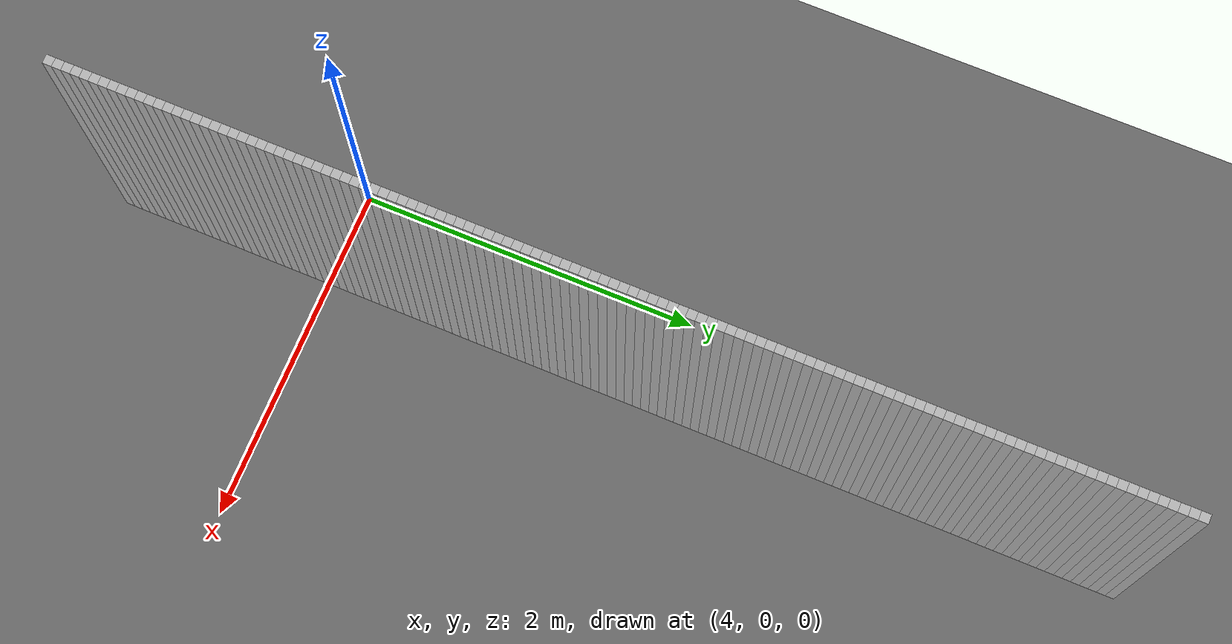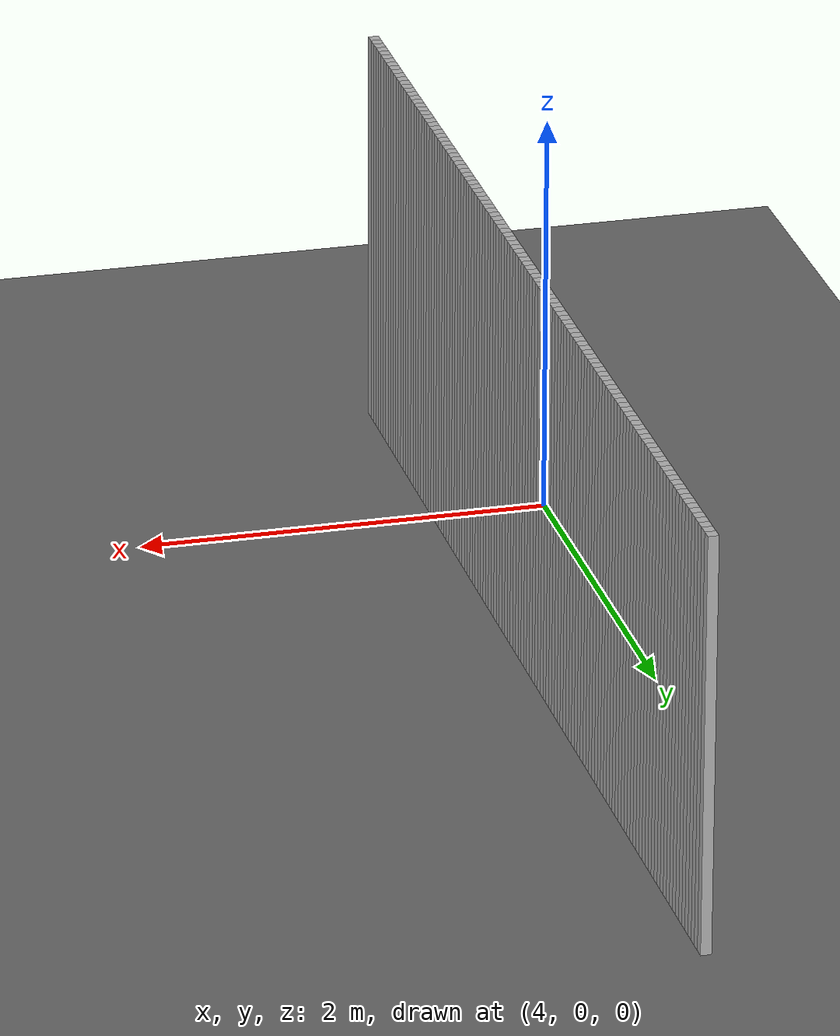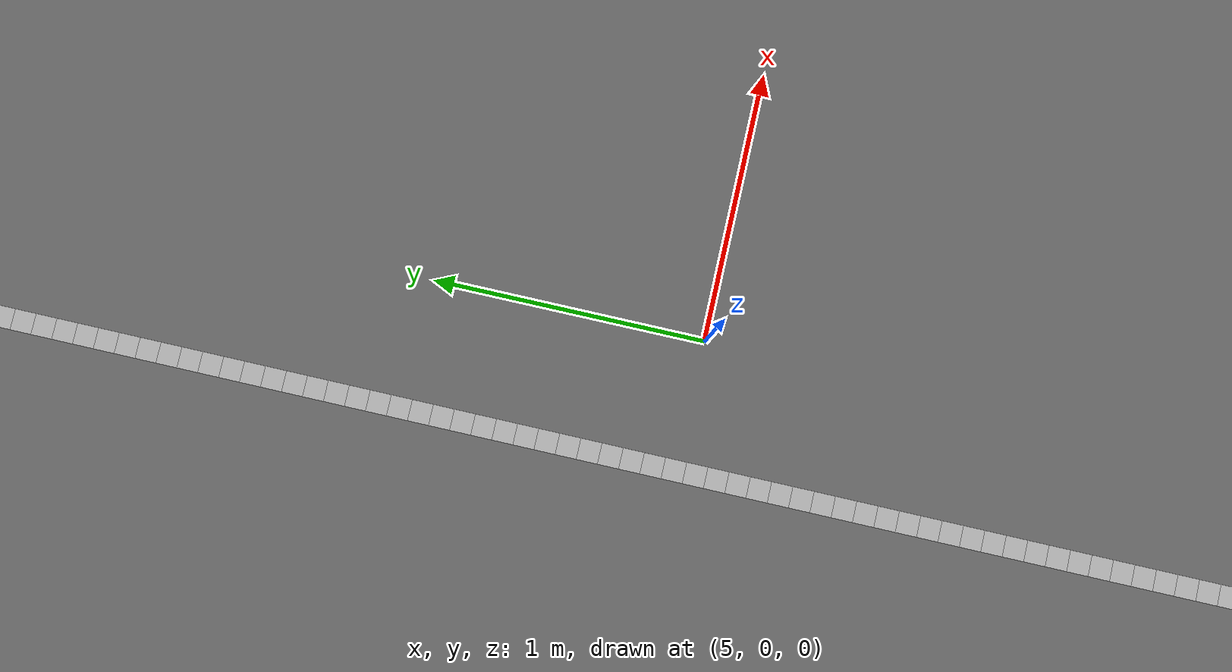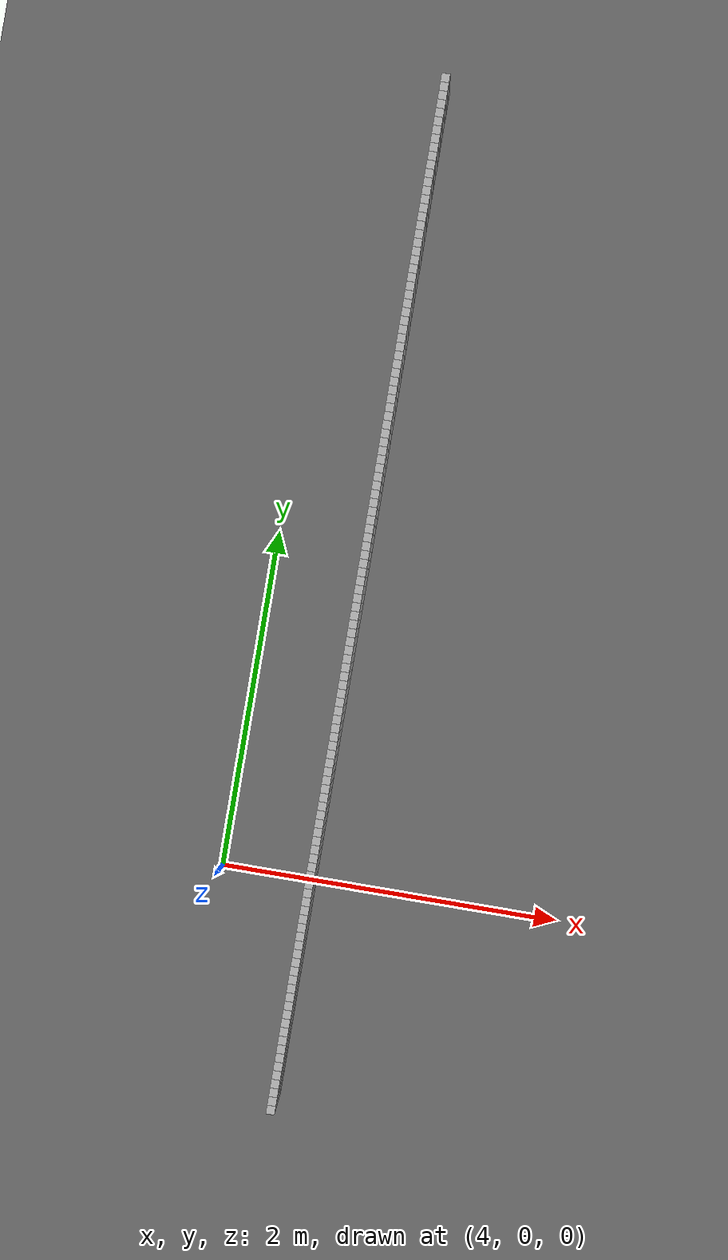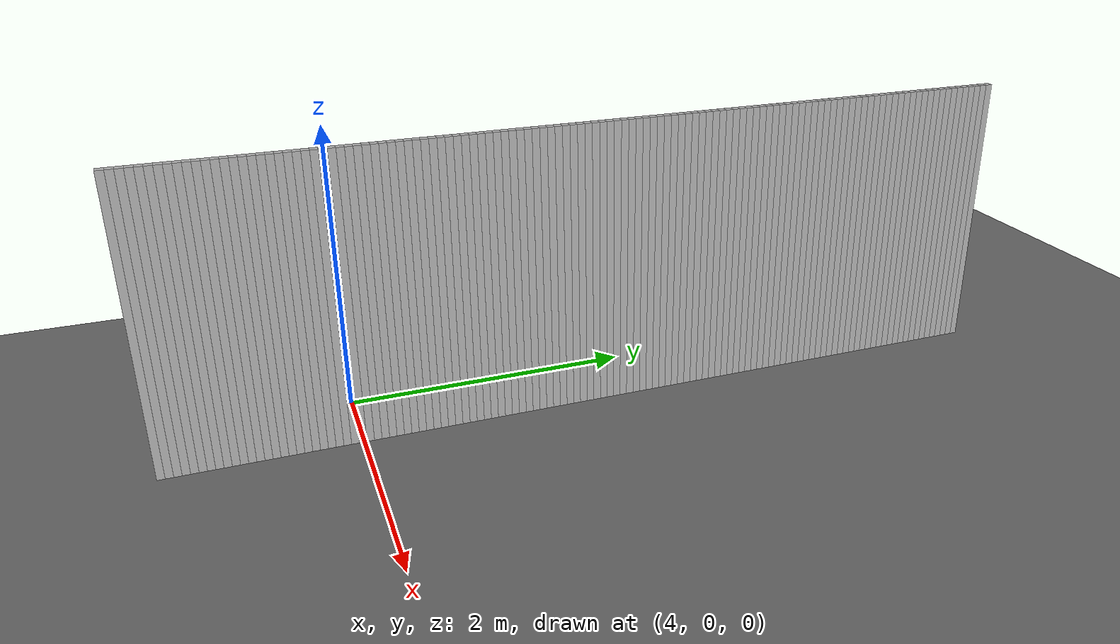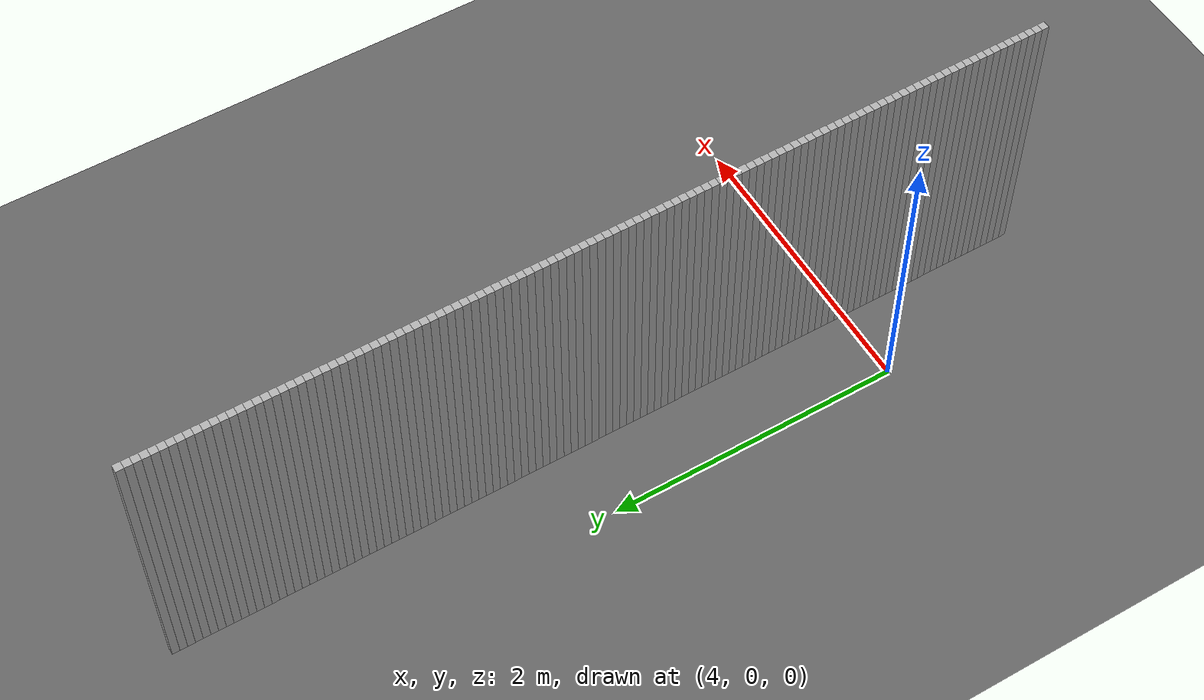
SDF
<sdf version="1.8">
 <world name="real_map">
  <model name="ground">
   <static>true</static>
   <link name="l">
    <collision name="c"><geometry><plane><normal>0 0 1</normal><size>100 100</size></plane></geometry></collision>
    <visual name="v">
     <geometry><plane><normal>0 0 1</normal><size>100 100</size></plane></geometry>
     <material><ambient>0.3 0.3 0.3 1</ambient><diffuse>0.4 0.4 0.4 1</diffuse></material>
    </visual>
   </link>
  </model>
  <model name="walls">
   <static>true</static>
   <link name="w841">
    <pose>4.534 4.692 1.000 0 0 0</pose>
    <collision name="c"><geometry><box><size>0.050 0.050 2.000</size></box></geometry></collision>
    <visual name="v">
     <geometry><box><size>0.050 0.050 2.000</size></box></geometry>
     <material><ambient>0.7 0.7 0.7 1</ambient><diffuse>0.7 0.7 0.7 1</diffuse></material>
    </visual>
   </link>
   <link name="w846">
    <pose>4.534 4.642 1.000 0 0 0</pose>
    <collision name="c"><geometry><box><size>0.050 0.050 2.000</size></box></geometry></collision>
    <visual name="v">
     <geometry><box><size>0.050 0.050 2.000</size></box></geometry>
     <material><ambient>0.7 0.7 0.7 1</ambient><diffuse>0.7 0.7 0.7 1</diffuse></material>
    </visual>
   </link>
   <link name="w853">
    <pose>4.534 4.592 1.000 0 0 0</pose>
    <collision name="c"><geometry><box><size>0.050 0.050 2.000</size></box></geometry></collision>
    <visual name="v">
     <geometry><box><size>0.050 0.050 2.000</size></box></geometry>
     <material><ambient>0.7 0.7 0.7 1</ambient><diffuse>0.7 0.7 0.7 1</diffuse></material>
    </visual>
   </link>
   <link name="w859">
    <pose>4.534 4.542 1.000 0 0 0</pose>
    <collision name="c"><geometry><box><size>0.050 0.050 2.000</size></box></geometry></collision>
    <visual name="v">
     <geometry><box><size>0.050 0.050 2.000</size></box></geometry>
     <material><ambient>0.7 0.7 0.7 1</ambient><diffuse>0.7 0.7 0.7 1</diffuse></material>
    </visual>
   </link>
   <link name="w863">
    <pose>4.534 4.492 1.000 0 0 0</pose>
    <collision name="c"><geometry><box><size>0.050 0.050 2.000</size></box></geometry></collision>
    <visual name="v">
     <geometry><box><size>0.050 0.050 2.000</size></box></geometry>
     <material><ambient>0.7 0.7 0.7 1</ambient><diffuse>0.7 0.7 0.7 1</diffuse></material>
    </visual>
   </link>
   <link name="w867">
    <pose>4.534 4.442 1.000 0 0 0</pose>
    <collision name="c"><geometry><box><size>0.050 0.050 2.000</size></box></geometry></collision>
    <visual name="v">
     <geometry><box><size>0.050 0.050 2.000</size></box></geometry>
     <material><ambient>0.7 0.7 0.7 1</ambient><diffuse>0.7 0.7 0.7 1</diffuse></material>
    </visual>
   </link>
   <link name="w871">
    <pose>4.534 4.392 1.000 0 0 0</pose>
    <collision name="c"><geometry><box><size>0.050 0.050 2.000</size></box></geometry></collision>
    <visual name="v">
     <geometry><box><size>0.050 0.050 2.000</size></box></geometry>
     <material><ambient>0.7 0.7 0.7 1</ambient><diffuse>0.7 0.7 0.7 1</diffuse></material>
    </visual>
   </link>
   <link name="w875">
    <pose>4.534 4.342 1.000 0 0 0</pose>
    <collision name="c"><geometry><box><size>0.050 0.050 2.000</size></box></geometry></collision>
    <visual name="v">
     <geometry><box><size>0.050 0.050 2.000</size></box></geometry>
     <material><ambient>0.7 0.7 0.7 1</ambient><diffuse>0.7 0.7 0.7 1</diffuse></material>
    </visual>
   </link>
   <link name="w879">
    <pose>4.534 4.292 1.000 0 0 0</pose>
    <collision name="c"><geometry><box><size>0.050 0.050 2.000</size></box></geometry></collision>
    <visual name="v">
     <geometry><box><size>0.050 0.050 2.000</size></box></geometry>
     <material><ambient>0.7 0.7 0.7 1</ambient><diffuse>0.7 0.7 0.7 1</diffuse></material>
    </visual>
   </link>
   <link name="w883">
    <pose>4.534 4.242 1.000 0 0 0</pose>
    <collision name="c"><geometry><box><size>0.050 0.050 2.000</size></box></geometry></collision>
    <visual name="v">
     <geometry><box><size>0.050 0.050 2.000</size></box></geometry>
     <material><ambient>0.7 0.7 0.7 1</ambient><diffuse>0.7 0.7 0.7 1</diffuse></material>
    </visual>
   </link>
   <link name="w887">
    <pose>4.534 4.192 1.000 0 0 0</pose>
    <collision name="c"><geometry><box><size>0.050 0.050 2.000</size></box></geometry></collision>
    <visual name="v">
     <geometry><box><size>0.050 0.050 2.000</size></box></geometry>
     <material><ambient>0.7 0.7 0.7 1</ambient><diffuse>0.7 0.7 0.7 1</diffuse></material>
    </visual>
   </link>
   <link name="w891">
    <pose>4.534 4.142 1.000 0 0 0</pose>
    <collision name="c"><geometry><box><size>0.050 0.050 2.000</size></box></geometry></collision>
    <visual name="v">
     <geometry><box><size>0.050 0.050 2.000</size></box></geometry>
     <material><ambient>0.7 0.7 0.7 1</ambient><diffuse>0.7 0.7 0.7 1</diffuse></material>
    </visual>
   </link>
   <link name="w895">
    <pose>4.534 4.092 1.000 0 0 0</pose>
    <collision name="c"><geometry><box><size>0.050 0.050 2.000</size></box></geometry></collision>
    <visual name="v">
     <geometry><box><size>0.050 0.050 2.000</size></box></geometry>
     <material><ambient>0.7 0.7 0.7 1</ambient><diffuse>0.7 0.7 0.7 1</diffuse></material>
    </visual>
   </link>
   <link name="w899">
    <pose>4.534 4.042 1.000 0 0 0</pose>
    <collision name="c"><geometry><box><size>0.050 0.050 2.000</size></box></geometry></collision>
    <visual name="v">
     <geometry><box><size>0.050 0.050 2.000</size></box></geometry>
     <material><ambient>0.7 0.7 0.7 1</ambient><diffuse>0.7 0.7 0.7 1</diffuse></material>
    </visual>
   </link>
   <link name="w903">
    <pose>4.534 3.992 1.000 0 0 0</pose>
    <collision name="c"><geometry><box><size>0.050 0.050 2.000</size></box></geometry></collision>
    <visual name="v">
     <geometry><box><size>0.050 0.050 2.000</size></box></geometry>
     <material><ambient>0.7 0.7 0.7 1</ambient><diffuse>0.7 0.7 0.7 1</diffuse></material>
    </visual>
   </link>
   <link name="w907">
    <pose>4.534 3.942 1.000 0 0 0</pose>
    <collision name="c"><geometry><box><size>0.050 0.050 2.000</size></box></geometry></collision>
    <visual name="v">
     <geometry><box><size>0.050 0.050 2.000</size></box></geometry>
     <material><ambient>0.7 0.7 0.7 1</ambient><diffuse>0.7 0.7 0.7 1</diffuse></material>
    </visual>
   </link>
   <link name="w911">
    <pose>4.534 3.892 1.000 0 0 0</pose>
    <collision name="c"><geometry><box><size>0.050 0.050 2.000</size></box></geometry></collision>
    <visual name="v">
     <geometry><box><size>0.050 0.050 2.000</size></box></geometry>
     <material><ambient>0.7 0.7 0.7 1</ambient><diffuse>0.7 0.7 0.7 1</diffuse></material>
    </visual>
   </link>
   <link name="w915">
    <pose>4.534 3.842 1.000 0 0 0</pose>
    <collision name="c"><geometry><box><size>0.050 0.050 2.000</size></box></geometry></collision>
    <visual name="v">
     <geometry><box><size>0.050 0.050 2.000</size></box></geometry>
     <material><ambient>0.7 0.7 0.7 1</ambient><diffuse>0.7 0.7 0.7 1</diffuse></material>
    </visual>
   </link>
   <link name="w919">
    <pose>4.534 3.792 1.000 0 0 0</pose>
    <collision name="c"><geometry><box><size>0.050 0.050 2.000</size></box></geometry></collision>
    <visual name="v">
     <geometry><box><size>0.050 0.050 2.000</size></box></geometry>
     <material><ambient>0.7 0.7 0.7 1</ambient><diffuse>0.7 0.7 0.7 1</diffuse></material>
    </visual>
   </link>
   <link name="w923">
    <pose>4.534 3.742 1.000 0 0 0</pose>
    <collision name="c"><geometry><box><size>0.050 0.050 2.000</size></box></geometry></collision>
    <visual name="v">
     <geometry><box><size>0.050 0.050 2.000</size></box></geometry>
     <material><ambient>0.7 0.7 0.7 1</ambient><diffuse>0.7 0.7 0.7 1</diffuse></material>
    </visual>
   </link>
   <link name="w927">
    <pose>4.534 3.692 1.000 0 0 0</pose>
    <collision name="c"><geometry><box><size>0.050 0.050 2.000</size></box></geometry></collision>
    <visual name="v">
     <geometry><box><size>0.050 0.050 2.000</size></box></geometry>
     <material><ambient>0.7 0.7 0.7 1</ambient><diffuse>0.7 0.7 0.7 1</diffuse></material>
    </visual>
   </link>
   <link name="w931">
    <pose>4.534 3.642 1.000 0 0 0</pose>
    <collision name="c"><geometry><box><size>0.050 0.050 2.000</size></box></geometry></collision>
    <visual name="v">
     <geometry><box><size>0.050 0.050 2.000</size></box></geometry>
     <material><ambient>0.7 0.7 0.7 1</ambient><diffuse>0.7 0.7 0.7 1</diffuse></material>
    </visual>
   </link>
   <link name="w935">
    <pose>4.534 3.592 1.000 0 0 0</pose>
    <collision name="c"><geometry><box><size>0.050 0.050 2.000</size></box></geometry></collision>
    <visual name="v">
     <geometry><box><size>0.050 0.050 2.000</size></box></geometry>
     <material><ambient>0.7 0.7 0.7 1</ambient><diffuse>0.7 0.7 0.7 1</diffuse></material>
    </visual>
   </link>
   <link name="w939">
    <pose>4.534 3.542 1.000 0 0 0</pose>
    <collision name="c"><geometry><box><size>0.050 0.050 2.000</size></box></geometry></collision>
    <visual name="v">
     <geometry><box><size>0.050 0.050 2.000</size></box></geometry>
     <material><ambient>0.7 0.7 0.7 1</ambient><diffuse>0.7 0.7 0.7 1</diffuse></material>
    </visual>
   </link>
   <link name="w943">
    <pose>4.534 3.492 1.000 0 0 0</pose>
    <collision name="c"><geometry><box><size>0.050 0.050 2.000</size></box></geometry></collision>
    <visual name="v">
     <geometry><box><size>0.050 0.050 2.000</size></box></geometry>
     <material><ambient>0.7 0.7 0.7 1</ambient><diffuse>0.7 0.7 0.7 1</diffuse></material>
    </visual>
   </link>
   <link name="w947">
    <pose>4.534 3.442 1.000 0 0 0</pose>
    <collision name="c"><geometry><box><size>0.050 0.050 2.000</size></box></geometry></collision>
    <visual name="v">
     <geometry><box><size>0.050 0.050 2.000</size></box></geometry>
     <material><ambient>0.7 0.7 0.7 1</ambient><diffuse>0.7 0.7 0.7 1</diffuse></material>
    </visual>
   </link>
   <link name="w951">
    <pose>4.534 3.392 1.000 0 0 0</pose>
    <collision name="c"><geometry><box><size>0.050 0.050 2.000</size></box></geometry></collision>
    <visual name="v">
     <geometry><box><size>0.050 0.050 2.000</size></box></geometry>
     <material><ambient>0.7 0.7 0.7 1</ambient><diffuse>0.7 0.7 0.7 1</diffuse></material>
    </visual>
   </link>
   <link name="w955">
    <pose>4.534 3.342 1.000 0 0 0</pose>
    <collision name="c"><geometry><box><size>0.050 0.050 2.000</size></box></geometry></collision>
    <visual name="v">
     <geometry><box><size>0.050 0.050 2.000</size></box></geometry>
     <material><ambient>0.7 0.7 0.7 1</ambient><diffuse>0.7 0.7 0.7 1</diffuse></material>
    </visual>
   </link>
   <link name="w959">
    <pose>4.534 3.292 1.000 0 0 0</pose>
    <collision name="c"><geometry><box><size>0.050 0.050 2.000</size></box></geometry></collision>
    <visual name="v">
     <geometry><box><size>0.050 0.050 2.000</size></box></geometry>
     <material><ambient>0.7 0.7 0.7 1</ambient><diffuse>0.7 0.7 0.7 1</diffuse></material>
    </visual>
   </link>
   <link name="w963">
    <pose>4.534 3.242 1.000 0 0 0</pose>
    <collision name="c"><geometry><box><size>0.050 0.050 2.000</size></box></geometry></collision>
    <visual name="v">
     <geometry><box><size>0.050 0.050 2.000</size></box></geometry>
     <material><ambient>0.7 0.7 0.7 1</ambient><diffuse>0.7 0.7 0.7 1</diffuse></material>
    </visual>
   </link>
   <link name="w968">
    <pose>4.534 3.192 1.000 0 0 0</pose>
    <collision name="c"><geometry><box><size>0.050 0.050 2.000</size></box></geometry></collision>
    <visual name="v">
     <geometry><box><size>0.050 0.050 2.000</size></box></geometry>
     <material><ambient>0.7 0.7 0.7 1</ambient><diffuse>0.7 0.7 0.7 1</diffuse></material>
    </visual>
   </link>
   <link name="w973">
    <pose>4.534 3.142 1.000 0 0 0</pose>
    <collision name="c"><geometry><box><size>0.050 0.050 2.000</size></box></geometry></collision>
    <visual name="v">
     <geometry><box><size>0.050 0.050 2.000</size></box></geometry>
     <material><ambient>0.7 0.7 0.7 1</ambient><diffuse>0.7 0.7 0.7 1</diffuse></material>
    </visual>
   </link>
   <link name="w978">
    <pose>4.534 3.092 1.000 0 0 0</pose>
    <collision name="c"><geometry><box><size>0.050 0.050 2.000</size></box></geometry></collision>
    <visual name="v">
     <geometry><box><size>0.050 0.050 2.000</size></box></geometry>
     <material><ambient>0.7 0.7 0.7 1</ambient><diffuse>0.7 0.7 0.7 1</diffuse></material>
    </visual>
   </link>
   <link name="w983">
    <pose>4.534 3.042 1.000 0 0 0</pose>
    <collision name="c"><geometry><box><size>0.050 0.050 2.000</size></box></geometry></collision>
    <visual name="v">
     <geometry><box><size>0.050 0.050 2.000</size></box></geometry>
     <material><ambient>0.7 0.7 0.7 1</ambient><diffuse>0.7 0.7 0.7 1</diffuse></material>
    </visual>
   </link>
   <link name="w988">
    <pose>4.534 2.992 1.000 0 0 0</pose>
    <collision name="c"><geometry><box><size>0.050 0.050 2.000</size></box></geometry></collision>
    <visual name="v">
     <geometry><box><size>0.050 0.050 2.000</size></box></geometry>
     <material><ambient>0.7 0.7 0.7 1</ambient><diffuse>0.7 0.7 0.7 1</diffuse></material>
    </visual>
   </link>
   <link name="w992">
    <pose>4.534 2.942 1.000 0 0 0</pose>
    <collision name="c"><geometry><box><size>0.050 0.050 2.000</size></box></geometry></collision>
    <visual name="v">
     <geometry><box><size>0.050 0.050 2.000</size></box></geometry>
     <material><ambient>0.7 0.7 0.7 1</ambient><diffuse>0.7 0.7 0.7 1</diffuse></material>
    </visual>
   </link>
   <link name="w995">
    <pose>4.534 2.892 1.000 0 0 0</pose>
    <collision name="c"><geometry><box><size>0.050 0.050 2.000</size></box></geometry></collision>
    <visual name="v">
     <geometry><box><size>0.050 0.050 2.000</size></box></geometry>
     <material><ambient>0.7 0.7 0.7 1</ambient><diffuse>0.7 0.7 0.7 1</diffuse></material>
    </visual>
   </link>
   <link name="w998">
    <pose>4.534 2.842 1.000 0 0 0</pose>
    <collision name="c"><geometry><box><size>0.050 0.050 2.000</size></box></geometry></collision>
    <visual name="v">
     <geometry><box><size>0.050 0.050 2.000</size></box></geometry>
     <material><ambient>0.7 0.7 0.7 1</ambient><diffuse>0.7 0.7 0.7 1</diffuse></material>
    </visual>
   </link>
   <link name="w1001">
    <pose>4.534 2.792 1.000 0 0 0</pose>
    <collision name="c"><geometry><box><size>0.050 0.050 2.000</size></box></geometry></collision>
    <visual name="v">
     <geometry><box><size>0.050 0.050 2.000</size></box></geometry>
     <material><ambient>0.7 0.7 0.7 1</ambient><diffuse>0.7 0.7 0.7 1</diffuse></material>
    </visual>
   </link>
   <link name="w1004">
    <pose>4.534 2.742 1.000 0 0 0</pose>
    <collision name="c"><geometry><box><size>0.050 0.050 2.000</size></box></geometry></collision>
    <visual name="v">
     <geometry><box><size>0.050 0.050 2.000</size></box></geometry>
     <material><ambient>0.7 0.7 0.7 1</ambient><diffuse>0.7 0.7 0.7 1</diffuse></material>
    </visual>
   </link>
   <link name="w1007">
    <pose>4.534 2.692 1.000 0 0 0</pose>
    <collision name="c"><geometry><box><size>0.050 0.050 2.000</size></box></geometry></collision>
    <visual name="v">
     <geometry><box><size>0.050 0.050 2.000</size></box></geometry>
     <material><ambient>0.7 0.7 0.7 1</ambient><diffuse>0.7 0.7 0.7 1</diffuse></material>
    </visual>
   </link>
   <link name="w1010">
    <pose>4.534 2.642 1.000 0 0 0</pose>
    <collision name="c"><geometry><box><size>0.050 0.050 2.000</size></box></geometry></collision>
    <visual name="v">
     <geometry><box><size>0.050 0.050 2.000</size></box></geometry>
     <material><ambient>0.7 0.7 0.7 1</ambient><diffuse>0.7 0.7 0.7 1</diffuse></material>
    </visual>
   </link>
   <link name="w1013">
    <pose>4.534 2.592 1.000 0 0 0</pose>
    <collision name="c"><geometry><box><size>0.050 0.050 2.000</size></box></geometry></collision>
    <visual name="v">
     <geometry><box><size>0.050 0.050 2.000</size></box></geometry>
     <material><ambient>0.7 0.7 0.7 1</ambient><diffuse>0.7 0.7 0.7 1</diffuse></material>
    </visual>
   </link>
   <link name="w1016">
    <pose>4.534 2.542 1.000 0 0 0</pose>
    <collision name="c"><geometry><box><size>0.050 0.050 2.000</size></box></geometry></collision>
    <visual name="v">
     <geometry><box><size>0.050 0.050 2.000</size></box></geometry>
     <material><ambient>0.7 0.7 0.7 1</ambient><diffuse>0.7 0.7 0.7 1</diffuse></material>
    </visual>
   </link>
   <link name="w1019">
    <pose>4.534 2.492 1.000 0 0 0</pose>
    <collision name="c"><geometry><box><size>0.050 0.050 2.000</size></box></geometry></collision>
    <visual name="v">
     <geometry><box><size>0.050 0.050 2.000</size></box></geometry>
     <material><ambient>0.7 0.7 0.7 1</ambient><diffuse>0.7 0.7 0.7 1</diffuse></material>
    </visual>
   </link>
   <link name="w1023">
    <pose>4.534 2.442 1.000 0 0 0</pose>
    <collision name="c"><geometry><box><size>0.050 0.050 2.000</size></box></geometry></collision>
    <visual name="v">
     <geometry><box><size>0.050 0.050 2.000</size></box></geometry>
     <material><ambient>0.7 0.7 0.7 1</ambient><diffuse>0.7 0.7 0.7 1</diffuse></material>
    </visual>
   </link>
   <link name="w1027">
    <pose>4.534 2.392 1.000 0 0 0</pose>
    <collision name="c"><geometry><box><size>0.050 0.050 2.000</size></box></geometry></collision>
    <visual name="v">
     <geometry><box><size>0.050 0.050 2.000</size></box></geometry>
     <material><ambient>0.7 0.7 0.7 1</ambient><diffuse>0.7 0.7 0.7 1</diffuse></material>
    </visual>
   </link>
   <link name="w1031">
    <pose>4.534 2.342 1.000 0 0 0</pose>
    <collision name="c"><geometry><box><size>0.050 0.050 2.000</size></box></geometry></collision>
    <visual name="v">
     <geometry><box><size>0.050 0.050 2.000</size></box></geometry>
     <material><ambient>0.7 0.7 0.7 1</ambient><diffuse>0.7 0.7 0.7 1</diffuse></material>
    </visual>
   </link>
   <link name="w1035">
    <pose>4.534 2.292 1.000 0 0 0</pose>
    <collision name="c"><geometry><box><size>0.050 0.050 2.000</size></box></geometry></collision>
    <visual name="v">
     <geometry><box><size>0.050 0.050 2.000</size></box></geometry>
     <material><ambient>0.7 0.7 0.7 1</ambient><diffuse>0.7 0.7 0.7 1</diffuse></material>
    </visual>
   </link>
   <link name="w1039">
    <pose>4.534 2.242 1.000 0 0 0</pose>
    <collision name="c"><geometry><box><size>0.050 0.050 2.000</size></box></geometry></collision>
    <visual name="v">
     <geometry><box><size>0.050 0.050 2.000</size></box></geometry>
     <material><ambient>0.7 0.7 0.7 1</ambient><diffuse>0.7 0.7 0.7 1</diffuse></material>
    </visual>
   </link>
   <link name="w1043">
    <pose>4.534 2.192 1.000 0 0 0</pose>
    <collision name="c"><geometry><box><size>0.050 0.050 2.000</size></box></geometry></collision>
    <visual name="v">
     <geometry><box><size>0.050 0.050 2.000</size></box></geometry>
     <material><ambient>0.7 0.7 0.7 1</ambient><diffuse>0.7 0.7 0.7 1</diffuse></material>
    </visual>
   </link>
   <link name="w1047">
    <pose>4.534 2.142 1.000 0 0 0</pose>
    <collision name="c"><geometry><box><size>0.050 0.050 2.000</size></box></geometry></collision>
    <visual name="v">
     <geometry><box><size>0.050 0.050 2.000</size></box></geometry>
     <material><ambient>0.7 0.7 0.7 1</ambient><diffuse>0.7 0.7 0.7 1</diffuse></material>
    </visual>
   </link>
   <link name="w1051">
    <pose>4.534 2.092 1.000 0 0 0</pose>
    <collision name="c"><geometry><box><size>0.050 0.050 2.000</size></box></geometry></collision>
    <visual name="v">
     <geometry><box><size>0.050 0.050 2.000</size></box></geometry>
     <material><ambient>0.7 0.7 0.7 1</ambient><diffuse>0.7 0.7 0.7 1</diffuse></material>
    </visual>
   </link>
   <link name="w1054">
    <pose>4.534 2.042 1.000 0 0 0</pose>
    <collision name="c"><geometry><box><size>0.050 0.050 2.000</size></box></geometry></collision>
    <visual name="v">
     <geometry><box><size>0.050 0.050 2.000</size></box></geometry>
     <material><ambient>0.7 0.7 0.7 1</ambient><diffuse>0.7 0.7 0.7 1</diffuse></material>
    </visual>
   </link>
   <link name="w1056">
    <pose>4.534 1.992 1.000 0 0 0</pose>
    <collision name="c"><geometry><box><size>0.050 0.050 2.000</size></box></geometry></collision>
    <visual name="v">
     <geometry><box><size>0.050 0.050 2.000</size></box></geometry>
     <material><ambient>0.7 0.7 0.7 1</ambient><diffuse>0.7 0.7 0.7 1</diffuse></material>
    </visual>
   </link>
   <link name="w1058">
    <pose>4.534 1.942 1.000 0 0 0</pose>
    <collision name="c"><geometry><box><size>0.050 0.050 2.000</size></box></geometry></collision>
    <visual name="v">
     <geometry><box><size>0.050 0.050 2.000</size></box></geometry>
     <material><ambient>0.7 0.7 0.7 1</ambient><diffuse>0.7 0.7 0.7 1</diffuse></material>
    </visual>
   </link>
   <link name="w1060">
    <pose>4.534 1.892 1.000 0 0 0</pose>
    <collision name="c"><geometry><box><size>0.050 0.050 2.000</size></box></geometry></collision>
    <visual name="v">
     <geometry><box><size>0.050 0.050 2.000</size></box></geometry>
     <material><ambient>0.7 0.7 0.7 1</ambient><diffuse>0.7 0.7 0.7 1</diffuse></material>
    </visual>
   </link>
   <link name="w1062">
    <pose>4.534 1.842 1.000 0 0 0</pose>
    <collision name="c"><geometry><box><size>0.050 0.050 2.000</size></box></geometry></collision>
    <visual name="v">
     <geometry><box><size>0.050 0.050 2.000</size></box></geometry>
     <material><ambient>0.7 0.7 0.7 1</ambient><diffuse>0.7 0.7 0.7 1</diffuse></material>
    </visual>
   </link>
   <link name="w1064">
    <pose>4.534 1.792 1.000 0 0 0</pose>
    <collision name="c"><geometry><box><size>0.050 0.050 2.000</size></box></geometry></collision>
    <visual name="v">
     <geometry><box><size>0.050 0.050 2.000</size></box></geometry>
     <material><ambient>0.7 0.7 0.7 1</ambient><diffuse>0.7 0.7 0.7 1</diffuse></material>
    </visual>
   </link>
   <link name="w1066">
    <pose>4.534 1.742 1.000 0 0 0</pose>
    <collision name="c"><geometry><box><size>0.050 0.050 2.000</size></box></geometry></collision>
    <visual name="v">
     <geometry><box><size>0.050 0.050 2.000</size></box></geometry>
     <material><ambient>0.7 0.7 0.7 1</ambient><diffuse>0.7 0.7 0.7 1</diffuse></material>
    </visual>
   </link>
   <link name="w1068">
    <pose>4.534 1.692 1.000 0 0 0</pose>
    <collision name="c"><geometry><box><size>0.050 0.050 2.000</size></box></geometry></collision>
    <visual name="v">
     <geometry><box><size>0.050 0.050 2.000</size></box></geometry>
     <material><ambient>0.7 0.7 0.7 1</ambient><diffuse>0.7 0.7 0.7 1</diffuse></material>
    </visual>
   </link>
   <link name="w1070">
    <pose>4.534 1.642 1.000 0 0 0</pose>
    <collision name="c"><geometry><box><size>0.050 0.050 2.000</size></box></geometry></collision>
    <visual name="v">
     <geometry><box><size>0.050 0.050 2.000</size></box></geometry>
     <material><ambient>0.7 0.7 0.7 1</ambient><diffuse>0.7 0.7 0.7 1</diffuse></material>
    </visual>
   </link>
   <link name="w1072">
    <pose>4.534 1.592 1.000 0 0 0</pose>
    <collision name="c"><geometry><box><size>0.050 0.050 2.000</size></box></geometry></collision>
    <visual name="v">
     <geometry><box><size>0.050 0.050 2.000</size></box></geometry>
     <material><ambient>0.7 0.7 0.7 1</ambient><diffuse>0.7 0.7 0.7 1</diffuse></material>
    </visual>
   </link>
   <link name="w1074">
    <pose>4.534 1.542 1.000 0 0 0</pose>
    <collision name="c"><geometry><box><size>0.050 0.050 2.000</size></box></geometry></collision>
    <visual name="v">
     <geometry><box><size>0.050 0.050 2.000</size></box></geometry>
     <material><ambient>0.7 0.7 0.7 1</ambient><diffuse>0.7 0.7 0.7 1</diffuse></material>
    </visual>
   </link>
   <link name="w1076">
    <pose>4.534 1.492 1.000 0 0 0</pose>
    <collision name="c"><geometry><box><size>0.050 0.050 2.000</size></box></geometry></collision>
    <visual name="v">
     <geometry><box><size>0.050 0.050 2.000</size></box></geometry>
     <material><ambient>0.7 0.7 0.7 1</ambient><diffuse>0.7 0.7 0.7 1</diffuse></material>
    </visual>
   </link>
   <link name="w1078">
    <pose>4.534 1.442 1.000 0 0 0</pose>
    <collision name="c"><geometry><box><size>0.050 0.050 2.000</size></box></geometry></collision>
    <visual name="v">
     <geometry><box><size>0.050 0.050 2.000</size></box></geometry>
     <material><ambient>0.7 0.7 0.7 1</ambient><diffuse>0.7 0.7 0.7 1</diffuse></material>
    </visual>
   </link>
   <link name="w1080">
    <pose>4.534 1.392 1.000 0 0 0</pose>
    <collision name="c"><geometry><box><size>0.050 0.050 2.000</size></box></geometry></collision>
    <visual name="v">
     <geometry><box><size>0.050 0.050 2.000</size></box></geometry>
     <material><ambient>0.7 0.7 0.7 1</ambient><diffuse>0.7 0.7 0.7 1</diffuse></material>
    </visual>
   </link>
   <link name="w1082">
    <pose>4.534 1.342 1.000 0 0 0</pose>
    <collision name="c"><geometry><box><size>0.050 0.050 2.000</size></box></geometry></collision>
    <visual name="v">
     <geometry><box><size>0.050 0.050 2.000</size></box></geometry>
     <material><ambient>0.7 0.7 0.7 1</ambient><diffuse>0.7 0.7 0.7 1</diffuse></material>
    </visual>
   </link>
   <link name="w1084">
    <pose>4.534 1.292 1.000 0 0 0</pose>
    <collision name="c"><geometry><box><size>0.050 0.050 2.000</size></box></geometry></collision>
    <visual name="v">
     <geometry><box><size>0.050 0.050 2.000</size></box></geometry>
     <material><ambient>0.7 0.7 0.7 1</ambient><diffuse>0.7 0.7 0.7 1</diffuse></material>
    </visual>
   </link>
   <link name="w1086">
    <pose>4.534 1.242 1.000 0 0 0</pose>
    <collision name="c"><geometry><box><size>0.050 0.050 2.000</size></box></geometry></collision>
    <visual name="v">
     <geometry><box><size>0.050 0.050 2.000</size></box></geometry>
     <material><ambient>0.7 0.7 0.7 1</ambient><diffuse>0.7 0.7 0.7 1</diffuse></material>
    </visual>
   </link>
   <link name="w1088">
    <pose>4.534 1.192 1.000 0 0 0</pose>
    <collision name="c"><geometry><box><size>0.050 0.050 2.000</size></box></geometry></collision>
    <visual name="v">
     <geometry><box><size>0.050 0.050 2.000</size></box></geometry>
     <material><ambient>0.7 0.7 0.7 1</ambient><diffuse>0.7 0.7 0.7 1</diffuse></material>
    </visual>
   </link>
   <link name="w1090">
    <pose>4.534 1.142 1.000 0 0 0</pose>
    <collision name="c"><geometry><box><size>0.050 0.050 2.000</size></box></geometry></collision>
    <visual name="v">
     <geometry><box><size>0.050 0.050 2.000</size></box></geometry>
     <material><ambient>0.7 0.7 0.7 1</ambient><diffuse>0.7 0.7 0.7 1</diffuse></material>
    </visual>
   </link>
   <link name="w1092">
    <pose>4.534 1.092 1.000 0 0 0</pose>
    <collision name="c"><geometry><box><size>0.050 0.050 2.000</size></box></geometry></collision>
    <visual name="v">
     <geometry><box><size>0.050 0.050 2.000</size></box></geometry>
     <material><ambient>0.7 0.7 0.7 1</ambient><diffuse>0.7 0.7 0.7 1</diffuse></material>
    </visual>
   </link>
   <link name="w1094">
    <pose>4.534 1.042 1.000 0 0 0</pose>
    <collision name="c"><geometry><box><size>0.050 0.050 2.000</size></box></geometry></collision>
    <visual name="v">
     <geometry><box><size>0.050 0.050 2.000</size></box></geometry>
     <material><ambient>0.7 0.7 0.7 1</ambient><diffuse>0.7 0.7 0.7 1</diffuse></material>
    </visual>
   </link>
   <link name="w1096">
    <pose>4.534 0.992 1.000 0 0 0</pose>
    <collision name="c"><geometry><box><size>0.050 0.050 2.000</size></box></geometry></collision>
    <visual name="v">
     <geometry><box><size>0.050 0.050 2.000</size></box></geometry>
     <material><ambient>0.7 0.7 0.7 1</ambient><diffuse>0.7 0.7 0.7 1</diffuse></material>
    </visual>
   </link>
   <link name="w1098">
    <pose>4.534 0.942 1.000 0 0 0</pose>
    <collision name="c"><geometry><box><size>0.050 0.050 2.000</size></box></geometry></collision>
    <visual name="v">
     <geometry><box><size>0.050 0.050 2.000</size></box></geometry>
     <material><ambient>0.7 0.7 0.7 1</ambient><diffuse>0.7 0.7 0.7 1</diffuse></material>
    </visual>
   </link>
   <link name="w1100">
    <pose>4.534 0.892 1.000 0 0 0</pose>
    <collision name="c"><geometry><box><size>0.050 0.050 2.000</size></box></geometry></collision>
    <visual name="v">
     <geometry><box><size>0.050 0.050 2.000</size></box></geometry>
     <material><ambient>0.7 0.7 0.7 1</ambient><diffuse>0.7 0.7 0.7 1</diffuse></material>
    </visual>
   </link>
   <link name="w1102">
    <pose>4.534 0.842 1.000 0 0 0</pose>
    <collision name="c"><geometry><box><size>0.050 0.050 2.000</size></box></geometry></collision>
    <visual name="v">
     <geometry><box><size>0.050 0.050 2.000</size></box></geometry>
     <material><ambient>0.7 0.7 0.7 1</ambient><diffuse>0.7 0.7 0.7 1</diffuse></material>
    </visual>
   </link>
   <link name="w1104">
    <pose>4.534 0.792 1.000 0 0 0</pose>
    <collision name="c"><geometry><box><size>0.050 0.050 2.000</size></box></geometry></collision>
    <visual name="v">
     <geometry><box><size>0.050 0.050 2.000</size></box></geometry>
     <material><ambient>0.7 0.7 0.7 1</ambient><diffuse>0.7 0.7 0.7 1</diffuse></material>
    </visual>
   </link>
   <link name="w1106">
    <pose>4.534 0.742 1.000 0 0 0</pose>
    <collision name="c"><geometry><box><size>0.050 0.050 2.000</size></box></geometry></collision>
    <visual name="v">
     <geometry><box><size>0.050 0.050 2.000</size></box></geometry>
     <material><ambient>0.7 0.7 0.7 1</ambient><diffuse>0.7 0.7 0.7 1</diffuse></material>
    </visual>
   </link>
   <link name="w1108">
    <pose>4.534 0.692 1.000 0 0 0</pose>
    <collision name="c"><geometry><box><size>0.050 0.050 2.000</size></box></geometry></collision>
    <visual name="v">
     <geometry><box><size>0.050 0.050 2.000</size></box></geometry>
     <material><ambient>0.7 0.7 0.7 1</ambient><diffuse>0.7 0.7 0.7 1</diffuse></material>
    </visual>
   </link>
   <link name="w1110">
    <pose>4.534 0.642 1.000 0 0 0</pose>
    <collision name="c"><geometry><box><size>0.050 0.050 2.000</size></box></geometry></collision>
    <visual name="v">
     <geometry><box><size>0.050 0.050 2.000</size></box></geometry>
     <material><ambient>0.7 0.7 0.7 1</ambient><diffuse>0.7 0.7 0.7 1</diffuse></material>
    </visual>
   </link>
   <link name="w1112">
    <pose>4.534 0.592 1.000 0 0 0</pose>
    <collision name="c"><geometry><box><size>0.050 0.050 2.000</size></box></geometry></collision>
    <visual name="v">
     <geometry><box><size>0.050 0.050 2.000</size></box></geometry>
     <material><ambient>0.7 0.7 0.7 1</ambient><diffuse>0.7 0.7 0.7 1</diffuse></material>
    </visual>
   </link>
   <link name="w1114">
    <pose>4.534 0.542 1.000 0 0 0</pose>
    <collision name="c"><geometry><box><size>0.050 0.050 2.000</size></box></geometry></collision>
    <visual name="v">
     <geometry><box><size>0.050 0.050 2.000</size></box></geometry>
     <material><ambient>0.7 0.7 0.7 1</ambient><diffuse>0.7 0.7 0.7 1</diffuse></material>
    </visual>
   </link>
   <link name="w1116">
    <pose>4.534 0.492 1.000 0 0 0</pose>
    <collision name="c"><geometry><box><size>0.050 0.050 2.000</size></box></geometry></collision>
    <visual name="v">
     <geometry><box><size>0.050 0.050 2.000</size></box></geometry>
     <material><ambient>0.7 0.7 0.7 1</ambient><diffuse>0.7 0.7 0.7 1</diffuse></material>
    </visual>
   </link>
   <link name="w1118">
    <pose>4.534 0.442 1.000 0 0 0</pose>
    <collision name="c"><geometry><box><size>0.050 0.050 2.000</size></box></geometry></collision>
    <visual name="v">
     <geometry><box><size>0.050 0.050 2.000</size></box></geometry>
     <material><ambient>0.7 0.7 0.7 1</ambient><diffuse>0.7 0.7 0.7 1</diffuse></material>
    </visual>
   </link>
   <link name="w1120">
    <pose>4.534 0.392 1.000 0 0 0</pose>
    <collision name="c"><geometry><box><size>0.050 0.050 2.000</size></box></geometry></collision>
    <visual name="v">
     <geometry><box><size>0.050 0.050 2.000</size></box></geometry>
     <material><ambient>0.7 0.7 0.7 1</ambient><diffuse>0.7 0.7 0.7 1</diffuse></material>
    </visual>
   </link>
   <link name="w1122">
    <pose>4.534 0.342 1.000 0 0 0</pose>
    <collision name="c"><geometry><box><size>0.050 0.050 2.000</size></box></geometry></collision>
    <visual name="v">
     <geometry><box><size>0.050 0.050 2.000</size></box></geometry>
     <material><ambient>0.7 0.7 0.7 1</ambient><diffuse>0.7 0.7 0.7 1</diffuse></material>
    </visual>
   </link>
   <link name="w1124">
    <pose>4.534 0.292 1.000 0 0 0</pose>
    <collision name="c"><geometry><box><size>0.050 0.050 2.000</size></box></geometry></collision>
    <visual name="v">
     <geometry><box><size>0.050 0.050 2.000</size></box></geometry>
     <material><ambient>0.7 0.7 0.7 1</ambient><diffuse>0.7 0.7 0.7 1</diffuse></material>
    </visual>
   </link>
   <link name="w1126">
    <pose>4.534 0.242 1.000 0 0 0</pose>
    <collision name="c"><geometry><box><size>0.050 0.050 2.000</size></box></geometry></collision>
    <visual name="v">
     <geometry><box><size>0.050 0.050 2.000</size></box></geometry>
     <material><ambient>0.7 0.7 0.7 1</ambient><diffuse>0.7 0.7 0.7 1</diffuse></material>
    </visual>
   </link>
   <link name="w1128">
    <pose>4.534 0.192 1.000 0 0 0</pose>
    <collision name="c"><geometry><box><size>0.050 0.050 2.000</size></box></geometry></collision>
    <visual name="v">
     <geometry><box><size>0.050 0.050 2.000</size></box></geometry>
     <material><ambient>0.7 0.7 0.7 1</ambient><diffuse>0.7 0.7 0.7 1</diffuse></material>
    </visual>
   </link>
   <link name="w1130">
    <pose>4.534 0.142 1.000 0 0 0</pose>
    <collision name="c"><geometry><box><size>0.050 0.050 2.000</size></box></geometry></collision>
    <visual name="v">
     <geometry><box><size>0.050 0.050 2.000</size></box></geometry>
     <material><ambient>0.7 0.7 0.7 1</ambient><diffuse>0.7 0.7 0.7 1</diffuse></material>
    </visual>
   </link>
   <link name="w1132">
    <pose>4.534 0.092 1.000 0 0 0</pose>
    <collision name="c"><geometry><box><size>0.050 0.050 2.000</size></box></geometry></collision>
    <visual name="v">
     <geometry><box><size>0.050 0.050 2.000</size></box></geometry>
     <material><ambient>0.7 0.7 0.7 1</ambient><diffuse>0.7 0.7 0.7 1</diffuse></material>
    </visual>
   </link>
   <link name="w1134">
    <pose>4.534 0.042 1.000 0 0 0</pose>
    <collision name="c"><geometry><box><size>0.050 0.050 2.000</size></box></geometry></collision>
    <visual name="v">
     <geometry><box><size>0.050 0.050 2.000</size></box></geometry>
     <material><ambient>0.7 0.7 0.7 1</ambient><diffuse>0.7 0.7 0.7 1</diffuse></material>
    </visual>
   </link>
   <link name="w1136">
    <pose>4.534 -0.008 1.000 0 0 0</pose>
    <collision name="c"><geometry><box><size>0.050 0.050 2.000</size></box></geometry></collision>
    <visual name="v">
     <geometry><box><size>0.050 0.050 2.000</size></box></geometry>
     <material><ambient>0.7 0.7 0.7 1</ambient><diffuse>0.7 0.7 0.7 1</diffuse></material>
    </visual>
   </link>
   <link name="w1138">
    <pose>4.534 -0.058 1.000 0 0 0</pose>
    <collision name="c"><geometry><box><size>0.050 0.050 2.000</size></box></geometry></collision>
    <visual name="v">
     <geometry><box><size>0.050 0.050 2.000</size></box></geometry>
     <material><ambient>0.7 0.7 0.7 1</ambient><diffuse>0.7 0.7 0.7 1</diffuse></material>
    </visual>
   </link>
   <link name="w1140">
    <pose>4.534 -0.108 1.000 0 0 0</pose>
    <collision name="c"><geometry><box><size>0.050 0.050 2.000</size></box></geometry></collision>
    <visual name="v">
     <geometry><box><size>0.050 0.050 2.000</size></box></geometry>
     <material><ambient>0.7 0.7 0.7 1</ambient><diffuse>0.7 0.7 0.7 1</diffuse></material>
    </visual>
   </link>
   <link name="w1142">
    <pose>4.534 -0.158 1.000 0 0 0</pose>
    <collision name="c"><geometry><box><size>0.050 0.050 2.000</size></box></geometry></collision>
    <visual name="v">
     <geometry><box><size>0.050 0.050 2.000</size></box></geometry>
     <material><ambient>0.7 0.7 0.7 1</ambient><diffuse>0.7 0.7 0.7 1</diffuse></material>
    </visual>
   </link>
   <link name="w1144">
    <pose>4.534 -0.208 1.000 0 0 0</pose>
    <collision name="c"><geometry><box><size>0.050 0.050 2.000</size></box></geometry></collision>
    <visual name="v">
     <geometry><box><size>0.050 0.050 2.000</size></box></geometry>
     <material><ambient>0.7 0.7 0.7 1</ambient><diffuse>0.7 0.7 0.7 1</diffuse></material>
    </visual>
   </link>
   <link name="w1146">
    <pose>4.534 -0.258 1.000 0 0 0</pose>
    <collision name="c"><geometry><box><size>0.050 0.050 2.000</size></box></geometry></collision>
    <visual name="v">
     <geometry><box><size>0.050 0.050 2.000</size></box></geometry>
     <material><ambient>0.7 0.7 0.7 1</ambient><diffuse>0.7 0.7 0.7 1</diffuse></material>
    </visual>
   </link>
   <link name="w1148">
    <pose>4.534 -0.308 1.000 0 0 0</pose>
    <collision name="c"><geometry><box><size>0.050 0.050 2.000</size></box></geometry></collision>
    <visual name="v">
     <geometry><box><size>0.050 0.050 2.000</size></box></geometry>
     <material><ambient>0.7 0.7 0.7 1</ambient><diffuse>0.7 0.7 0.7 1</diffuse></material>
    </visual>
   </link>
   <link name="w1150">
    <pose>4.534 -0.358 1.000 0 0 0</pose>
    <collision name="c"><geometry><box><size>0.050 0.050 2.000</size></box></geometry></collision>
    <visual name="v">
     <geometry><box><size>0.050 0.050 2.000</size></box></geometry>
     <material><ambient>0.7 0.7 0.7 1</ambient><diffuse>0.7 0.7 0.7 1</diffuse></material>
    </visual>
   </link>
   <link name="w1152">
    <pose>4.534 -0.408 1.000 0 0 0</pose>
    <collision name="c"><geometry><box><size>0.050 0.050 2.000</size></box></geometry></collision>
    <visual name="v">
     <geometry><box><size>0.050 0.050 2.000</size></box></geometry>
     <material><ambient>0.7 0.7 0.7 1</ambient><diffuse>0.7 0.7 0.7 1</diffuse></material>
    </visual>
   </link>
   <link name="w1154">
    <pose>4.534 -0.458 1.000 0 0 0</pose>
    <collision name="c"><geometry><box><size>0.050 0.050 2.000</size></box></geometry></collision>
    <visual name="v">
     <geometry><box><size>0.050 0.050 2.000</size></box></geometry>
     <material><ambient>0.7 0.7 0.7 1</ambient><diffuse>0.7 0.7 0.7 1</diffuse></material>
    </visual>
   </link>
   <link name="w1156">
    <pose>4.534 -0.508 1.000 0 0 0</pose>
    <collision name="c"><geometry><box><size>0.050 0.050 2.000</size></box></geometry></collision>
    <visual name="v">
     <geometry><box><size>0.050 0.050 2.000</size></box></geometry>
     <material><ambient>0.7 0.7 0.7 1</ambient><diffuse>0.7 0.7 0.7 1</diffuse></material>
    </visual>
   </link>
   <link name="w1158">
    <pose>4.534 -0.558 1.000 0 0 0</pose>
    <collision name="c"><geometry><box><size>0.050 0.050 2.000</size></box></geometry></collision>
    <visual name="v">
     <geometry><box><size>0.050 0.050 2.000</size></box></geometry>
     <material><ambient>0.7 0.7 0.7 1</ambient><diffuse>0.7 0.7 0.7 1</diffuse></material>
    </visual>
   </link>
   <link name="w1160">
    <pose>4.534 -0.608 1.000 0 0 0</pose>
    <collision name="c"><geometry><box><size>0.050 0.050 2.000</size></box></geometry></collision>
    <visual name="v">
     <geometry><box><size>0.050 0.050 2.000</size></box></geometry>
     <material><ambient>0.7 0.7 0.7 1</ambient><diffuse>0.7 0.7 0.7 1</diffuse></material>
    </visual>
   </link>
   <link name="w1162">
    <pose>4.534 -0.658 1.000 0 0 0</pose>
    <collision name="c"><geometry><box><size>0.050 0.050 2.000</size></box></geometry></collision>
    <visual name="v">
     <geometry><box><size>0.050 0.050 2.000</size></box></geometry>
     <material><ambient>0.7 0.7 0.7 1</ambient><diffuse>0.7 0.7 0.7 1</diffuse></material>
    </visual>
   </link>
   <link name="w1164">
    <pose>4.534 -0.708 1.000 0 0 0</pose>
    <collision name="c"><geometry><box><size>0.050 0.050 2.000</size></box></geometry></collision>
    <visual name="v">
     <geometry><box><size>0.050 0.050 2.000</size></box></geometry>
     <material><ambient>0.7 0.7 0.7 1</ambient><diffuse>0.7 0.7 0.7 1</diffuse></material>
    </visual>
   </link>
   <link name="w1166">
    <pose>4.534 -0.758 1.000 0 0 0</pose>
    <collision name="c"><geometry><box><size>0.050 0.050 2.000</size></box></geometry></collision>
    <visual name="v">
     <geometry><box><size>0.050 0.050 2.000</size></box></geometry>
     <material><ambient>0.7 0.7 0.7 1</ambient><diffuse>0.7 0.7 0.7 1</diffuse></material>
    </visual>
   </link>
   <link name="w1168">
    <pose>4.534 -0.808 1.000 0 0 0</pose>
    <collision name="c"><geometry><box><size>0.050 0.050 2.000</size></box></geometry></collision>
    <visual name="v">
     <geometry><box><size>0.050 0.050 2.000</size></box></geometry>
     <material><ambient>0.7 0.7 0.7 1</ambient><diffuse>0.7 0.7 0.7 1</diffuse></material>
    </visual>
   </link>
   <link name="w1170">
    <pose>4.534 -0.858 1.000 0 0 0</pose>
    <collision name="c"><geometry><box><size>0.050 0.050 2.000</size></box></geometry></collision>
    <visual name="v">
     <geometry><box><size>0.050 0.050 2.000</size></box></geometry>
     <material><ambient>0.7 0.7 0.7 1</ambient><diffuse>0.7 0.7 0.7 1</diffuse></material>
    </visual>
   </link>
   <link name="w1172">
    <pose>4.534 -0.908 1.000 0 0 0</pose>
    <collision name="c"><geometry><box><size>0.050 0.050 2.000</size></box></geometry></collision>
    <visual name="v">
     <geometry><box><size>0.050 0.050 2.000</size></box></geometry>
     <material><ambient>0.7 0.7 0.7 1</ambient><diffuse>0.7 0.7 0.7 1</diffuse></material>
    </visual>
   </link>
   <link name="w1174">
    <pose>4.534 -0.958 1.000 0 0 0</pose>
    <collision name="c"><geometry><box><size>0.050 0.050 2.000</size></box></geometry></collision>
    <visual name="v">
     <geometry><box><size>0.050 0.050 2.000</size></box></geometry>
     <material><ambient>0.7 0.7 0.7 1</ambient><diffuse>0.7 0.7 0.7 1</diffuse></material>
    </visual>
   </link>
   <link name="w1176">
    <pose>4.534 -1.008 1.000 0 0 0</pose>
    <collision name="c"><geometry><box><size>0.050 0.050 2.000</size></box></geometry></collision>
    <visual name="v">
     <geometry><box><size>0.050 0.050 2.000</size></box></geometry>
     <material><ambient>0.7 0.7 0.7 1</ambient><diffuse>0.7 0.7 0.7 1</diffuse></material>
    </visual>
   </link>
   <link name="w1178">
    <pose>4.534 -1.058 1.000 0 0 0</pose>
    <collision name="c"><geometry><box><size>0.050 0.050 2.000</size></box></geometry></collision>
    <visual name="v">
     <geometry><box><size>0.050 0.050 2.000</size></box></geometry>
     <material><ambient>0.7 0.7 0.7 1</ambient><diffuse>0.7 0.7 0.7 1</diffuse></material>
    </visual>
   </link>
   <link name="w1180">
    <pose>4.534 -1.108 1.000 0 0 0</pose>
    <collision name="c"><geometry><box><size>0.050 0.050 2.000</size></box></geometry></collision>
    <visual name="v">
     <geometry><box><size>0.050 0.050 2.000</size></box></geometry>
     <material><ambient>0.7 0.7 0.7 1</ambient><diffuse>0.7 0.7 0.7 1</diffuse></material>
    </visual>
   </link>
   <link name="w1182">
    <pose>4.534 -1.158 1.000 0 0 0</pose>
    <collision name="c"><geometry><box><size>0.050 0.050 2.000</size></box></geometry></collision>
    <visual name="v">
     <geometry><box><size>0.050 0.050 2.000</size></box></geometry>
     <material><ambient>0.7 0.7 0.7 1</ambient><diffuse>0.7 0.7 0.7 1</diffuse></material>
    </visual>
   </link>
   <link name="w1184">
    <pose>4.534 -1.208 1.000 0 0 0</pose>
    <collision name="c"><geometry><box><size>0.050 0.050 2.000</size></box></geometry></collision>
    <visual name="v">
     <geometry><box><size>0.050 0.050 2.000</size></box></geometry>
     <material><ambient>0.7 0.7 0.7 1</ambient><diffuse>0.7 0.7 0.7 1</diffuse></material>
    </visual>
   </link>
   <link name="w1186">
    <pose>4.534 -1.258 1.000 0 0 0</pose>
    <collision name="c"><geometry><box><size>0.050 0.050 2.000</size></box></geometry></collision>
    <visual name="v">
     <geometry><box><size>0.050 0.050 2.000</size></box></geometry>
     <material><ambient>0.7 0.7 0.7 1</ambient><diffuse>0.7 0.7 0.7 1</diffuse></material>
    </visual>
   </link>
  </model>
 </world>
</sdf>
